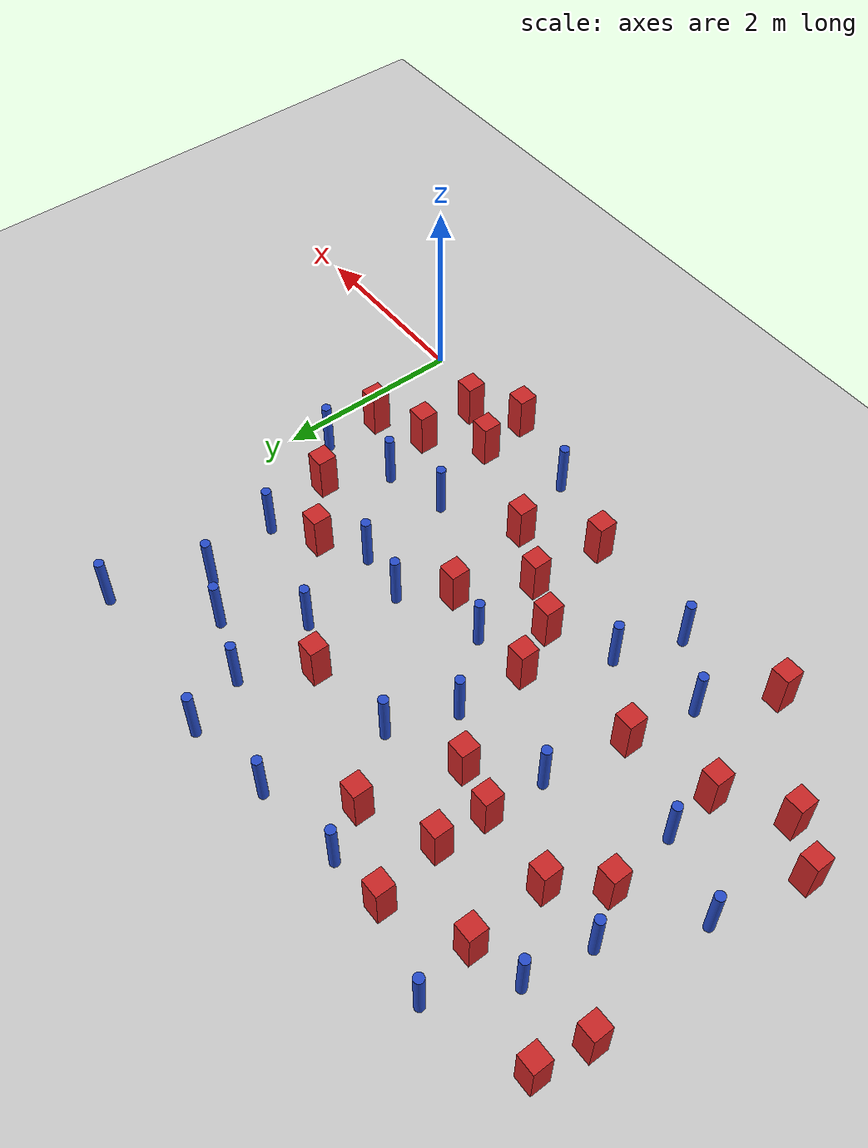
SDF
<sdf version="1.6">
 <world name="default">
  <model name="ground_plane">
   <static>1</static>
   <link name="link">
    <collision name="collision">
     <geometry><plane><normal>0 0 1</normal><size>100 100</size></plane></geometry>
     <surface><friction><ode><mu>100</mu><mu2>50</mu2></ode></friction></surface>
    </collision>
    <visual name="visual">
     <cast_shadows>0</cast_shadows>
     <geometry><plane><normal>0 0 1</normal><size>100 100</size></plane></geometry>
     <material>
      <ambient>1.0 1.0 1.0 1.0</ambient>
      <diffuse>0.8 0.8 0.8 1.0</diffuse>
      <specular>0.01 0.01 0.01 1.000000</specular>
     </material>
    </visual>
   </link>
  </model>
  <model name="square_post_obstacle1">
   <static>true</static>
   <pose>-3.82861871613 1.99735328516 1.91545236811e-07 -7.35059704564e-06 1.12565212e-07 2.39332434364e-05</pose>
   <link name="link">
    <pose>0 0 0.25 0 -0 0</pose>
    <inertial>
     <mass>100</mass>
     <inertia>
      <ixx>0.166667</ixx>
      <ixy>0</ixy>
      <ixz>0</ixz>
      <iyy>0.166667</iyy>
      <iyz>0</iyz>
      <izz>0.166667</izz>
     </inertia>
    </inertial>
    <collision name="collision"><geometry><box><size>.2 .2 .5</size></box></geometry></collision>
    <visual name="visual">
     <geometry><box><size>.2 .2 .5</size></box></geometry>
     <material>
      <script><name>Gazebo/Red</name><uri>file://media/materials/scripts/gazebo.material</uri></script>
     </material>
    </visual>
   </link>
  </model>
  <model name="pole_obstacle4">
   <static>true</static>
   <pose>-1.10873818178 3.6798783113 7.38925637345e-09 -8.47170692799e-08 1.24976765053e-08 -1.74513093017e-07</pose>
   <link name="link">
    <pose>0 0 0.3 0 -0 0</pose>
    <inertial>
     <mass>1</mass>
     <inertia><ixx>0.145833</ixx><ixy>0</ixy><ixz>0</ixz><iyy>0.145833</iyy><iyz>0</iyz><izz>0.125</izz></inertia>
    </inertial>
    <collision name="collision">
     <geometry><cylinder><radius>0.05</radius><length>.6</length></cylinder></geometry>
    </collision>
    <visual name="visual">
     <geometry><cylinder><radius>0.05</radius><length>.6</length></cylinder></geometry>
     <material>
      <script><name>Gazebo/Blue</name><uri>file://media/materials/scripts/gazebo.material</uri></script>
     </material>
    </visual>
   </link>
  </model>
  <model name="square_post_obstacle2">
   <static>true</static>
   <pose>-0.89729398552 0.916109627229 1.91545236811e-07 -7.35059704564e-06 1.12565212e-07 2.39332434364e-05</pose>
   <link name="link">
    <pose>0 0 0.25 0 -0 0</pose>
    <inertial>
     <mass>100</mass>
     <inertia>
      <ixx>0.166667</ixx>
      <ixy>0</ixy>
      <ixz>0</ixz>
      <iyy>0.166667</iyy>
      <iyz>0</iyz>
      <izz>0.166667</izz>
     </inertia>
    </inertial>
    <collision name="collision"><geometry><box><size>.2 .2 .5</size></box></geometry></collision>
    <visual name="visual">
     <geometry><box><size>.2 .2 .5</size></box></geometry>
     <material>
      <script><name>Gazebo/Red</name><uri>file://media/materials/scripts/gazebo.material</uri></script>
     </material>
    </visual>
   </link>
  </model>
  <model name="pole_obstacle14">
   <static>true</static>
   <pose>-3.2540493623 2.05309047934 7.38925637345e-09 -8.471706928e-08 1.24976765098e-08 -1.74513093016e-07</pose>
   <link name="link">
    <pose>0 0 0.3 0 -0 0</pose>
    <inertial>
     <mass>1</mass>
     <inertia><ixx>0.145833</ixx><ixy>0</ixy><ixz>0</ixz><iyy>0.145833</iyy><iyz>0</iyz><izz>0.125</izz></inertia>
    </inertial>
    <collision name="collision">
     <geometry><cylinder><radius>0.05</radius><length>.6</length></cylinder></geometry>
    </collision>
    <visual name="visual">
     <geometry><cylinder><radius>0.05</radius><length>.6</length></cylinder></geometry>
     <material>
      <script><name>Gazebo/Blue</name><uri>file://media/materials/scripts/gazebo.material</uri></script>
     </material>
    </visual>
   </link>
  </model>
  <model name="square_post_obstacle22">
   <static>true</static>
   <pose>-5.59544724633 3.22659309187 1.91545236811e-07 -7.35059704564e-06 1.12565212e-07 2.39332434364e-05</pose>
   <link name="link">
    <pose>0 0 0.25 0 -0 0</pose>
    <inertial>
     <mass>100</mass>
     <inertia>
      <ixx>0.166667</ixx>
      <ixy>0</ixy>
      <ixz>0</ixz>
      <iyy>0.166667</iyy>
      <iyz>0</iyz>
      <izz>0.166667</izz>
     </inertia>
    </inertial>
    <collision name="collision"><geometry><box><size>.2 .2 .5</size></box></geometry></collision>
    <visual name="visual">
     <geometry><box><size>.2 .2 .5</size></box></geometry>
     <material>
      <script><name>Gazebo/Red</name><uri>file://media/materials/scripts/gazebo.material</uri></script>
     </material>
    </visual>
   </link>
  </model>
  <model name="pole_obstacle36">
   <static>true</static>
   <pose>-5.75046494023 4.64045337168 7.38925637345e-09 -8.47170692796e-08 1.24976764786e-08 -1.74513093032e-07</pose>
   <link name="link">
    <pose>0 0 0.3 0 -0 0</pose>
    <inertial>
     <mass>1</mass>
     <inertia><ixx>0.145833</ixx><ixy>0</ixy><ixz>0</ixz><iyy>0.145833</iyy><iyz>0</iyz><izz>0.125</izz></inertia>
    </inertial>
    <collision name="collision">
     <geometry><cylinder><radius>0.05</radius><length>.6</length></cylinder></geometry>
    </collision>
    <visual name="visual">
     <geometry><cylinder><radius>0.05</radius><length>.6</length></cylinder></geometry>
     <material>
      <script><name>Gazebo/Blue</name><uri>file://media/materials/scripts/gazebo.material</uri></script>
     </material>
    </visual>
   </link>
  </model>
  <model name="square_post_obstacle32">
   <static>true</static>
   <pose>-1.37622830693 2.59084589432 1.91545236811e-07 -7.35059704564e-06 1.12565212e-07 2.39332434364e-05</pose>
   <link name="link">
    <pose>0 0 0.25 0 -0 0</pose>
    <inertial>
     <mass>100</mass>
     <inertia>
      <ixx>0.166667</ixx>
      <ixy>0</ixy>
      <ixz>0</ixz>
      <iyy>0.166667</iyy>
      <iyz>0</iyz>
      <izz>0.166667</izz>
     </inertia>
    </inertial>
    <collision name="collision"><geometry><box><size>.2 .2 .5</size></box></geometry></collision>
    <visual name="visual">
     <geometry><box><size>.2 .2 .5</size></box></geometry>
     <material>
      <script><name>Gazebo/Red</name><uri>file://media/materials/scripts/gazebo.material</uri></script>
     </material>
    </visual>
   </link>
  </model>
  <model name="square_post_obstacle33">
   <static>true</static>
   <pose>-4.2962798087 3.05084157516 1.91545236811e-07 -7.35059704564e-06 1.12565212e-07 2.39332434364e-05</pose>
   <link name="link">
    <pose>0 0 0.25 0 -0 0</pose>
    <inertial>
     <mass>100</mass>
     <inertia>
      <ixx>0.166667</ixx>
      <ixy>0</ixy>
      <ixz>0</ixz>
      <iyy>0.166667</iyy>
      <iyz>0</iyz>
      <izz>0.166667</izz>
     </inertia>
    </inertial>
    <collision name="collision"><geometry><box><size>.2 .2 .5</size></box></geometry></collision>
    <visual name="visual">
     <geometry><box><size>.2 .2 .5</size></box></geometry>
     <material>
      <script><name>Gazebo/Red</name><uri>file://media/materials/scripts/gazebo.material</uri></script>
     </material>
    </visual>
   </link>
  </model>
  <model name="square_post_obstacle36">
   <static>true</static>
   <pose>-1.34672621101 -0.0509006503075 1.91545236811e-07 -7.35059704564e-06 1.12565212e-07 2.39332434364e-05</pose>
   <link name="link">
    <pose>0 0 0.25 0 -0 0</pose>
    <inertial>
     <mass>100</mass>
     <inertia>
      <ixx>0.166667</ixx>
      <ixy>0</ixy>
      <ixz>0</ixz>
      <iyy>0.166667</iyy>
      <iyz>0</iyz>
      <izz>0.166667</izz>
     </inertia>
    </inertial>
    <collision name="collision"><geometry><box><size>.2 .2 .5</size></box></geometry></collision>
    <visual name="visual">
     <geometry><box><size>.2 .2 .5</size></box></geometry>
     <material>
      <script><name>Gazebo/Red</name><uri>file://media/materials/scripts/gazebo.material</uri></script>
     </material>
    </visual>
   </link>
  </model>
  <model name="pole_obstacle53">
   <static>true</static>
   <pose>-1.7264818208 1.3268778265 7.38925637345e-09 -8.471706928e-08 1.24976765079e-08 -1.74513093017e-07</pose>
   <link name="link">
    <pose>0 0 0.3 0 -0 0</pose>
    <inertial>
     <mass>1</mass>
     <inertia><ixx>0.145833</ixx><ixy>0</ixy><ixz>0</ixz><iyy>0.145833</iyy><iyz>0</iyz><izz>0.125</izz></inertia>
    </inertial>
    <collision name="collision">
     <geometry><cylinder><radius>0.05</radius><length>.6</length></cylinder></geometry>
    </collision>
    <visual name="visual">
     <geometry><cylinder><radius>0.05</radius><length>.6</length></cylinder></geometry>
     <material>
      <script><name>Gazebo/Blue</name><uri>file://media/materials/scripts/gazebo.material</uri></script>
     </material>
    </visual>
   </link>
  </model>
  <model name="square_post_obstacle42">
   <static>true</static>
   <pose>-4.88449978645 4.39351112853 1.91545236811e-07 -7.35059704564e-06 1.12565212e-07 2.39332434364e-05</pose>
   <link name="link">
    <pose>0 0 0.25 0 -0 0</pose>
    <inertial>
     <mass>100</mass>
     <inertia>
      <ixx>0.166667</ixx>
      <ixy>0</ixy>
      <ixz>0</ixz>
      <iyy>0.166667</iyy>
      <iyz>0</iyz>
      <izz>0.166667</izz>
     </inertia>
    </inertial>
    <collision name="collision"><geometry><box><size>.2 .2 .5</size></box></geometry></collision>
    <visual name="visual">
     <geometry><box><size>.2 .2 .5</size></box></geometry>
     <material>
      <script><name>Gazebo/Red</name><uri>file://media/materials/scripts/gazebo.material</uri></script>
     </material>
    </visual>
   </link>
  </model>
  <model name="square_post_obstacle43">
   <static>true</static>
   <pose>-5.46254135515 0.278101646873 1.91545236811e-07 -7.35059704564e-06 1.12565212e-07 2.39332434364e-05</pose>
   <link name="link">
    <pose>0 0 0.25 0 -0 0</pose>
    <inertial>
     <mass>100</mass>
     <inertia>
      <ixx>0.166667</ixx>
      <ixy>0</ixy>
      <ixz>0</ixz>
      <iyy>0.166667</iyy>
      <iyz>0</iyz>
      <izz>0.166667</izz>
     </inertia>
    </inertial>
    <collision name="collision"><geometry><box><size>.2 .2 .5</size></box></geometry></collision>
    <visual name="visual">
     <geometry><box><size>.2 .2 .5</size></box></geometry>
     <material>
      <script><name>Gazebo/Red</name><uri>file://media/materials/scripts/gazebo.material</uri></script>
     </material>
    </visual>
   </link>
  </model>
  <model name="pole_obstacle59">
   <static>true</static>
   <pose>-2.26407819195 0.169490094688 7.38925637345e-09 -8.471706928e-08 1.2497676517e-08 -1.74513093012e-07</pose>
   <link name="link">
    <pose>0 0 0.3 0 -0 0</pose>
    <inertial>
     <mass>1</mass>
     <inertia><ixx>0.145833</ixx><ixy>0</ixy><ixz>0</ixz><iyy>0.145833</iyy><iyz>0</iyz><izz>0.125</izz></inertia>
    </inertial>
    <collision name="collision">
     <geometry><cylinder><radius>0.05</radius><length>.6</length></cylinder></geometry>
    </collision>
    <visual name="visual">
     <geometry><cylinder><radius>0.05</radius><length>.6</length></cylinder></geometry>
     <material>
      <script><name>Gazebo/Blue</name><uri>file://media/materials/scripts/gazebo.material</uri></script>
     </material>
    </visual>
   </link>
  </model>
  <model name="square_post_obstacle47">
   <static>true</static>
   <pose>-4.75981678048 3.70433833082 1.91545236811e-07 -7.35059704564e-06 1.12565212e-07 2.39332434364e-05</pose>
   <link name="link">
    <pose>0 0 0.25 0 -0 0</pose>
    <inertial>
     <mass>100</mass>
     <inertia>
      <ixx>0.166667</ixx>
      <ixy>0</ixy>
      <ixz>0</ixz>
      <iyy>0.166667</iyy>
      <iyz>0</iyz>
      <izz>0.166667</izz>
     </inertia>
    </inertial>
    <collision name="collision"><geometry><box><size>.2 .2 .5</size></box></geometry></collision>
    <visual name="visual">
     <geometry><box><size>.2 .2 .5</size></box></geometry>
     <material>
      <script><name>Gazebo/Red</name><uri>file://media/materials/scripts/gazebo.material</uri></script>
     </material>
    </visual>
   </link>
  </model>
  <model name="square_post_obstacle49">
   <static>true</static>
   <pose>-2.62985750249 3.48583115859 1.91545236811e-07 -7.35059704564e-06 1.12565212e-07 2.39332434364e-05</pose>
   <link name="link">
    <pose>0 0 0.25 0 -0 0</pose>
    <inertial>
     <mass>100</mass>
     <inertia>
      <ixx>0.166667</ixx>
      <ixy>0</ixy>
      <ixz>0</ixz>
      <iyy>0.166667</iyy>
      <iyz>0</iyz>
      <izz>0.166667</izz>
     </inertia>
    </inertial>
    <collision name="collision"><geometry><box><size>.2 .2 .5</size></box></geometry></collision>
    <visual name="visual">
     <geometry><box><size>.2 .2 .5</size></box></geometry>
     <material>
      <script><name>Gazebo/Red</name><uri>file://media/materials/scripts/gazebo.material</uri></script>
     </material>
    </visual>
   </link>
  </model>
  <model name="pole_obstacle75">
   <static>true</static>
   <pose>-3.39257598105 4.58209513307 7.38925637345e-09 -8.47170692798e-08 1.24976765033e-08 -1.74513093019e-07</pose>
   <link name="link">
    <pose>0 0 0.3 0 -0 0</pose>
    <inertial>
     <mass>1</mass>
     <inertia><ixx>0.145833</ixx><ixy>0</ixy><ixz>0</ixz><iyy>0.145833</iyy><iyz>0</iyz><izz>0.125</izz></inertia>
    </inertial>
    <collision name="collision">
     <geometry><cylinder><radius>0.05</radius><length>.6</length></cylinder></geometry>
    </collision>
    <visual name="visual">
     <geometry><cylinder><radius>0.05</radius><length>.6</length></cylinder></geometry>
     <material>
      <script><name>Gazebo/Blue</name><uri>file://media/materials/scripts/gazebo.material</uri></script>
     </material>
    </visual>
   </link>
  </model>
  <model name="square_post_obstacle65">
   <static>true</static>
   <pose>-4.96301721024 1.71224650671 1.91545236811e-07 -7.35059704564e-06 1.12565212e-07 2.39332434364e-05</pose>
   <link name="link">
    <pose>0 0 0.25 0 -0 0</pose>
    <inertial>
     <mass>100</mass>
     <inertia>
      <ixx>0.166667</ixx>
      <ixy>0</ixy>
      <ixz>0</ixz>
      <iyy>0.166667</iyy>
      <iyz>0</iyz>
      <izz>0.166667</izz>
     </inertia>
    </inertial>
    <collision name="collision"><geometry><box><size>.2 .2 .5</size></box></geometry></collision>
    <visual name="visual">
     <geometry><box><size>.2 .2 .5</size></box></geometry>
     <material>
      <script><name>Gazebo/Red</name><uri>file://media/materials/scripts/gazebo.material</uri></script>
     </material>
    </visual>
   </link>
  </model>
  <model name="square_post_obstacle73">
   <static>true</static>
   <pose>-0.369655319681 1.14825361039 1.91545236811e-07 -7.35059704564e-06 1.12565212e-07 2.39332434364e-05</pose>
   <link name="link">
    <pose>0 0 0.25 0 -0 0</pose>
    <inertial>
     <mass>100</mass>
     <inertia>
      <ixx>0.166667</ixx>
      <ixy>0</ixy>
      <ixz>0</ixz>
      <iyy>0.166667</iyy>
      <iyz>0</iyz>
      <izz>0.166667</izz>
     </inertia>
    </inertial>
    <collision name="collision"><geometry><box><size>.2 .2 .5</size></box></geometry></collision>
    <visual name="visual">
     <geometry><box><size>.2 .2 .5</size></box></geometry>
     <material>
      <script><name>Gazebo/Red</name><uri>file://media/materials/scripts/gazebo.material</uri></script>
     </material>
    </visual>
   </link>
  </model>
  <model name="pole_obstacle89">
   <static>true</static>
   <pose>-3.80087336187 2.71158850187 7.38925637345e-09 -8.471706928e-08 1.24976765098e-08 -1.74513093016e-07</pose>
   <link name="link">
    <pose>0 0 0.3 0 -0 0</pose>
    <inertial>
     <mass>1</mass>
     <inertia><ixx>0.145833</ixx><ixy>0</ixy><ixz>0</ixz><iyy>0.145833</iyy><iyz>0</iyz><izz>0.125</izz></inertia>
    </inertial>
    <collision name="collision">
     <geometry><cylinder><radius>0.05</radius><length>.6</length></cylinder></geometry>
    </collision>
    <visual name="visual">
     <geometry><cylinder><radius>0.05</radius><length>.6</length></cylinder></geometry>
     <material>
      <script><name>Gazebo/Blue</name><uri>file://media/materials/scripts/gazebo.material</uri></script>
     </material>
    </visual>
   </link>
  </model>
  <model name="square_post_obstacle79">
   <static>true</static>
   <pose>-1.4237210547 0.494392746506 1.91545236811e-07 -7.35059704564e-06 1.12565212e-07 2.39332434364e-05</pose>
   <link name="link">
    <pose>0 0 0.25 0 -0 0</pose>
    <inertial>
     <mass>100</mass>
     <inertia>
      <ixx>0.166667</ixx>
      <ixy>0</ixy>
      <ixz>0</ixz>
      <iyy>0.166667</iyy>
      <iyz>0</iyz>
      <izz>0.166667</izz>
     </inertia>
    </inertial>
    <collision name="collision"><geometry><box><size>.2 .2 .5</size></box></geometry></collision>
    <visual name="visual">
     <geometry><box><size>.2 .2 .5</size></box></geometry>
     <material>
      <script><name>Gazebo/Red</name><uri>file://media/materials/scripts/gazebo.material</uri></script>
     </material>
    </visual>
   </link>
  </model>
  <model name="pole_obstacle93">
   <static>true</static>
   <pose>-4.21842144567 1.19878922163 7.38925637345e-09 -8.471706928e-08 1.24976765134e-08 -1.74513093015e-07</pose>
   <link name="link">
    <pose>0 0 0.3 0 -0 0</pose>
    <inertial>
     <mass>1</mass>
     <inertia><ixx>0.145833</ixx><ixy>0</ixy><ixz>0</ixz><iyy>0.145833</iyy><iyz>0</iyz><izz>0.125</izz></inertia>
    </inertial>
    <collision name="collision">
     <geometry><cylinder><radius>0.05</radius><length>.6</length></cylinder></geometry>
    </collision>
    <visual name="visual">
     <geometry><cylinder><radius>0.05</radius><length>.6</length></cylinder></geometry>
     <material>
      <script><name>Gazebo/Blue</name><uri>file://media/materials/scripts/gazebo.material</uri></script>
     </material>
    </visual>
   </link>
  </model>
  <model name="pole_obstacle94">
   <static>true</static>
   <pose>-5.88464390128 2.05511163188 7.38925637345e-09 -8.47170692798e-08 1.24976764937e-08 -1.74513093023e-07</pose>
   <link name="link">
    <pose>0 0 0.3 0 -0 0</pose>
    <inertial>
     <mass>1</mass>
     <inertia><ixx>0.145833</ixx><ixy>0</ixy><ixz>0</ixz><iyy>0.145833</iyy><iyz>0</iyz><izz>0.125</izz></inertia>
    </inertial>
    <collision name="collision">
     <geometry><cylinder><radius>0.05</radius><length>.6</length></cylinder></geometry>
    </collision>
    <visual name="visual">
     <geometry><cylinder><radius>0.05</radius><length>.6</length></cylinder></geometry>
     <material>
      <script><name>Gazebo/Blue</name><uri>file://media/materials/scripts/gazebo.material</uri></script>
     </material>
    </visual>
   </link>
  </model>
  <model name="pole_obstacle97">
   <static>true</static>
   <pose>-0.32615713015 1.74065500919 7.38925637345e-09 -8.47170692798e-08 1.24976765025e-08 -1.74513093018e-07</pose>
   <link name="link">
    <pose>0 0 0.3 0 -0 0</pose>
    <inertial>
     <mass>1</mass>
     <inertia><ixx>0.145833</ixx><ixy>0</ixy><ixz>0</ixz><iyy>0.145833</iyy><iyz>0</iyz><izz>0.125</izz></inertia>
    </inertial>
    <collision name="collision">
     <geometry><cylinder><radius>0.05</radius><length>.6</length></cylinder></geometry>
    </collision>
    <visual name="visual">
     <geometry><cylinder><radius>0.05</radius><length>.6</length></cylinder></geometry>
     <material>
      <script><name>Gazebo/Blue</name><uri>file://media/materials/scripts/gazebo.material</uri></script>
     </material>
    </visual>
   </link>
  </model>
  <model name="pole_obstacle100">
   <static>true</static>
   <pose>-6.23925597602 3.22507679364 7.38925637345e-09 -8.47170692798e-08 1.24976764937e-08 -1.74513093023e-07</pose>
   <link name="link">
    <pose>0 0 0.3 0 -0 0</pose>
    <inertial>
     <mass>1</mass>
     <inertia><ixx>0.145833</ixx><ixy>0</ixy><ixz>0</ixz><iyy>0.145833</iyy><iyz>0</iyz><izz>0.125</izz></inertia>
    </inertial>
    <collision name="collision">
     <geometry><cylinder><radius>0.05</radius><length>.6</length></cylinder></geometry>
    </collision>
    <visual name="visual">
     <geometry><cylinder><radius>0.05</radius><length>.6</length></cylinder></geometry>
     <material>
      <script><name>Gazebo/Blue</name><uri>file://media/materials/scripts/gazebo.material</uri></script>
     </material>
    </visual>
   </link>
  </model>
  <model name="square_post_obstacle102">
   <static>true</static>
   <pose>-0.868502044288 0.259589344754 1.91545236811e-07 -7.35059704564e-06 1.12565212e-07 2.39332434364e-05</pose>
   <link name="link">
    <pose>0 0 0.25 0 -0 0</pose>
    <inertial>
     <mass>100</mass>
     <inertia>
      <ixx>0.166667</ixx>
      <ixy>0</ixy>
      <ixz>0</ixz>
      <iyy>0.166667</iyy>
      <iyz>0</iyz>
      <izz>0.166667</izz>
     </inertia>
    </inertial>
    <collision name="collision"><geometry><box><size>.2 .2 .5</size></box></geometry></collision>
    <visual name="visual">
     <geometry><box><size>.2 .2 .5</size></box></geometry>
     <material>
      <script><name>Gazebo/Red</name><uri>file://media/materials/scripts/gazebo.material</uri></script>
     </material>
    </visual>
   </link>
  </model>
  <model name="pole_obstacle111">
   <static>true</static>
   <pose>-4.45268478891 0.519425926819 7.38925637345e-09 -8.471706928e-08 1.24976765164e-08 -1.74513093012e-07</pose>
   <link name="link">
    <pose>0 0 0.3 0 -0 0</pose>
    <inertial>
     <mass>1</mass>
     <inertia><ixx>0.145833</ixx><ixy>0</ixy><ixz>0</ixz><iyy>0.145833</iyy><iyz>0</iyz><izz>0.125</izz></inertia>
    </inertial>
    <collision name="collision">
     <geometry><cylinder><radius>0.05</radius><length>.6</length></cylinder></geometry>
    </collision>
    <visual name="visual">
     <geometry><cylinder><radius>0.05</radius><length>.6</length></cylinder></geometry>
     <material>
      <script><name>Gazebo/Blue</name><uri>file://media/materials/scripts/gazebo.material</uri></script>
     </material>
    </visual>
   </link>
  </model>
  <model name="square_post_obstacle111">
   <static>true</static>
   <pose>-5.6337568449 4.0310030945 1.91545236811e-07 -7.35059704564e-06 1.12565212e-07 2.39332434364e-05</pose>
   <link name="link">
    <pose>0 0 0.25 0 -0 0</pose>
    <inertial>
     <mass>100</mass>
     <inertia>
      <ixx>0.166667</ixx>
      <ixy>0</ixy>
      <ixz>0</ixz>
      <iyy>0.166667</iyy>
      <iyz>0</iyz>
      <izz>0.166667</izz>
     </inertia>
    </inertial>
    <collision name="collision"><geometry><box><size>.2 .2 .5</size></box></geometry></collision>
    <visual name="visual">
     <geometry><box><size>.2 .2 .5</size></box></geometry>
     <material>
      <script><name>Gazebo/Red</name><uri>file://media/materials/scripts/gazebo.material</uri></script>
     </material>
    </visual>
   </link>
  </model>
  <model name="pole_obstacle115">
   <static>true</static>
   <pose>-5.08942324214 0.983615040038 7.38925637345e-09 -8.471706928e-08 1.24976765166e-08 -1.74513093011e-07</pose>
   <link name="link">
    <pose>0 0 0.3 0 -0 0</pose>
    <inertial>
     <mass>1</mass>
     <inertia><ixx>0.145833</ixx><ixy>0</ixy><ixz>0</ixz><iyy>0.145833</iyy><iyz>0</iyz><izz>0.125</izz></inertia>
    </inertial>
    <collision name="collision">
     <geometry><cylinder><radius>0.05</radius><length>.6</length></cylinder></geometry>
    </collision>
    <visual name="visual">
     <geometry><cylinder><radius>0.05</radius><length>.6</length></cylinder></geometry>
     <material>
      <script><name>Gazebo/Blue</name><uri>file://media/materials/scripts/gazebo.material</uri></script>
     </material>
    </visual>
   </link>
  </model>
  <model name="square_post_obstacle113">
   <static>true</static>
   <pose>-4.0443296254 4.01644302751 1.91545236811e-07 -7.35059704564e-06 1.12565212e-07 2.39332434364e-05</pose>
   <link name="link">
    <pose>0 0 0.25 0 -0 0</pose>
    <inertial>
     <mass>100</mass>
     <inertia>
      <ixx>0.166667</ixx>
      <ixy>0</ixy>
      <ixz>0</ixz>
      <iyy>0.166667</iyy>
      <iyz>0</iyz>
      <izz>0.166667</izz>
     </inertia>
    </inertial>
    <collision name="collision"><geometry><box><size>.2 .2 .5</size></box></geometry></collision>
    <visual name="visual">
     <geometry><box><size>.2 .2 .5</size></box></geometry>
     <material>
      <script><name>Gazebo/Red</name><uri>file://media/materials/scripts/gazebo.material</uri></script>
     </material>
    </visual>
   </link>
  </model>
  <model name="square_post_obstacle115">
   <static>true</static>
   <pose>-3.14337051292 0.436961158678 1.91545236811e-07 -7.35059704564e-06 1.12565212e-07 2.39332434364e-05</pose>
   <link name="link">
    <pose>0 0 0.25 0 -0 0</pose>
    <inertial>
     <mass>100</mass>
     <inertia>
      <ixx>0.166667</ixx>
      <ixy>0</ixy>
      <ixz>0</ixz>
      <iyy>0.166667</iyy>
      <iyz>0</iyz>
      <izz>0.166667</izz>
     </inertia>
    </inertial>
    <collision name="collision"><geometry><box><size>.2 .2 .5</size></box></geometry></collision>
    <visual name="visual">
     <geometry><box><size>.2 .2 .5</size></box></geometry>
     <material>
      <script><name>Gazebo/Red</name><uri>file://media/materials/scripts/gazebo.material</uri></script>
     </material>
    </visual>
   </link>
  </model>
  <model name="square_post_obstacle117">
   <static>true</static>
   <pose>-3.10222040292 1.23319798799 1.91545236811e-07 -7.35059704564e-06 1.12565212e-07 2.39332434364e-05</pose>
   <link name="link">
    <pose>0 0 0.25 0 -0 0</pose>
    <inertial>
     <mass>100</mass>
     <inertia>
      <ixx>0.166667</ixx>
      <ixy>0</ixy>
      <ixz>0</ixz>
      <iyy>0.166667</iyy>
      <iyz>0</iyz>
      <izz>0.166667</izz>
     </inertia>
    </inertial>
    <collision name="collision"><geometry><box><size>.2 .2 .5</size></box></geometry></collision>
    <visual name="visual">
     <geometry><box><size>.2 .2 .5</size></box></geometry>
     <material>
      <script><name>Gazebo/Red</name><uri>file://media/materials/scripts/gazebo.material</uri></script>
     </material>
    </visual>
   </link>
  </model>
  <model name="pole_obstacle118">
   <static>true</static>
   <pose>-4.30916928756 4.45772670913 7.38925637345e-09 -8.47170692796e-08 1.24976764786e-08 -1.74513093032e-07</pose>
   <link name="link">
    <pose>0 0 0.3 0 -0 0</pose>
    <inertial>
     <mass>1</mass>
     <inertia><ixx>0.145833</ixx><ixy>0</ixy><ixz>0</ixz><iyy>0.145833</iyy><iyz>0</iyz><izz>0.125</izz></inertia>
    </inertial>
    <collision name="collision">
     <geometry><cylinder><radius>0.05</radius><length>.6</length></cylinder></geometry>
    </collision>
    <visual name="visual">
     <geometry><cylinder><radius>0.05</radius><length>.6</length></cylinder></geometry>
     <material>
      <script><name>Gazebo/Blue</name><uri>file://media/materials/scripts/gazebo.material</uri></script>
     </material>
    </visual>
   </link>
  </model>
  <model name="pole_obstacle119">
   <static>true</static>
   <pose>-0.908863043789 2.86088895708 7.38925637345e-09 -8.47170692799e-08 1.2497676509e-08 -1.74513093016e-07</pose>
   <link name="link">
    <pose>0 0 0.3 0 -0 0</pose>
    <inertial>
     <mass>1</mass>
     <inertia><ixx>0.145833</ixx><ixy>0</ixy><ixz>0</ixz><iyy>0.145833</iyy><iyz>0</iyz><izz>0.125</izz></inertia>
    </inertial>
    <collision name="collision">
     <geometry><cylinder><radius>0.05</radius><length>.6</length></cylinder></geometry>
    </collision>
    <visual name="visual">
     <geometry><cylinder><radius>0.05</radius><length>.6</length></cylinder></geometry>
     <material>
      <script><name>Gazebo/Blue</name><uri>file://media/materials/scripts/gazebo.material</uri></script>
     </material>
    </visual>
   </link>
  </model>
  <model name="pole_obstacle120">
   <static>true</static>
   <pose>-1.08600761465 1.49226533698 7.38925637345e-09 -8.471706928e-08 1.24976765079e-08 -1.74513093017e-07</pose>
   <link name="link">
    <pose>0 0 0.3 0 -0 0</pose>
    <inertial>
     <mass>1</mass>
     <inertia><ixx>0.145833</ixx><ixy>0</ixy><ixz>0</ixz><iyy>0.145833</iyy><iyz>0</iyz><izz>0.125</izz></inertia>
    </inertial>
    <collision name="collision">
     <geometry><cylinder><radius>0.05</radius><length>.6</length></cylinder></geometry>
    </collision>
    <visual name="visual">
     <geometry><cylinder><radius>0.05</radius><length>.6</length></cylinder></geometry>
     <material>
      <script><name>Gazebo/Blue</name><uri>file://media/materials/scripts/gazebo.material</uri></script>
     </material>
    </visual>
   </link>
  </model>
  <model name="pole_obstacle121">
   <static>true</static>
   <pose>-2.25668139829 4.12787472432 7.38925637345e-09 -8.47170692798e-08 1.24976765033e-08 -1.74513093019e-07</pose>
   <link name="link">
    <pose>0 0 0.3 0 -0 0</pose>
    <inertial>
     <mass>1</mass>
     <inertia><ixx>0.145833</ixx><ixy>0</ixy><ixz>0</ixz><iyy>0.145833</iyy><iyz>0</iyz><izz>0.125</izz></inertia>
    </inertial>
    <collision name="collision">
     <geometry><cylinder><radius>0.05</radius><length>.6</length></cylinder></geometry>
    </collision>
    <visual name="visual">
     <geometry><cylinder><radius>0.05</radius><length>.6</length></cylinder></geometry>
     <material>
      <script><name>Gazebo/Blue</name><uri>file://media/materials/scripts/gazebo.material</uri></script>
     </material>
    </visual>
   </link>
  </model>
  <model name="pole_obstacle127">
   <static>true</static>
   <pose>-6.12861925512 3.90177246256 7.38925637345e-09 -8.47170692798e-08 1.24976764937e-08 -1.74513093023e-07</pose>
   <link name="link">
    <pose>0 0 0.3 0 -0 0</pose>
    <inertial>
     <mass>1</mass>
     <inertia><ixx>0.145833</ixx><ixy>0</ixy><ixz>0</ixz><iyy>0.145833</iyy><iyz>0</iyz><izz>0.125</izz></inertia>
    </inertial>
    <collision name="collision">
     <geometry><cylinder><radius>0.05</radius><length>.6</length></cylinder></geometry>
    </collision>
    <visual name="visual">
     <geometry><cylinder><radius>0.05</radius><length>.6</length></cylinder></geometry>
     <material>
      <script><name>Gazebo/Blue</name><uri>file://media/materials/scripts/gazebo.material</uri></script>
     </material>
    </visual>
   </link>
  </model>
  <model name="pole_obstacle129">
   <static>true</static>
   <pose>-2.13041443169 3.23992465783 7.38925637345e-09 -8.47170692798e-08 1.24976764939e-08 -1.74513093025e-07</pose>
   <link name="link">
    <pose>0 0 0.3 0 -0 0</pose>
    <inertial>
     <mass>1</mass>
     <inertia><ixx>0.145833</ixx><ixy>0</ixy><ixz>0</ixz><iyy>0.145833</iyy><iyz>0</iyz><izz>0.125</izz></inertia>
    </inertial>
    <collision name="collision">
     <geometry><cylinder><radius>0.05</radius><length>.6</length></cylinder></geometry>
    </collision>
    <visual name="visual">
     <geometry><cylinder><radius>0.05</radius><length>.6</length></cylinder></geometry>
     <material>
      <script><name>Gazebo/Blue</name><uri>file://media/materials/scripts/gazebo.material</uri></script>
     </material>
    </visual>
   </link>
  </model>
  <model name="square_post_obstacle126">
   <static>true</static>
   <pose>-2.72688237356 1.93022170088 1.91545236811e-07 -7.35059704564e-06 1.12565212e-07 2.39332434364e-05</pose>
   <link name="link">
    <pose>0 0 0.25 0 -0 0</pose>
    <inertial>
     <mass>100</mass>
     <inertia>
      <ixx>0.166667</ixx>
      <ixy>0</ixy>
      <ixz>0</ixz>
      <iyy>0.166667</iyy>
      <iyz>0</iyz>
      <izz>0.166667</izz>
     </inertia>
    </inertial>
    <collision name="collision"><geometry><box><size>.2 .2 .5</size></box></geometry></collision>
    <visual name="visual">
     <geometry><box><size>.2 .2 .5</size></box></geometry>
     <material>
      <script><name>Gazebo/Red</name><uri>file://media/materials/scripts/gazebo.material</uri></script>
     </material>
    </visual>
   </link>
  </model>
  <model name="pole_obstacle135">
   <static>true</static>
   <pose>-1.59094032874 3.89150622042 7.38925637345e-09 -8.47170692799e-08 1.24976765053e-08 -1.74513093017e-07</pose>
   <link name="link">
    <pose>0 0 0.3 0 -0 0</pose>
    <inertial>
     <mass>1</mass>
     <inertia><ixx>0.145833</ixx><ixy>0</ixy><ixz>0</ixz><iyy>0.145833</iyy><iyz>0</iyz><izz>0.125</izz></inertia>
    </inertial>
    <collision name="collision">
     <geometry><cylinder><radius>0.05</radius><length>.6</length></cylinder></geometry>
    </collision>
    <visual name="visual">
     <geometry><cylinder><radius>0.05</radius><length>.6</length></cylinder></geometry>
     <material>
      <script><name>Gazebo/Blue</name><uri>file://media/materials/scripts/gazebo.material</uri></script>
     </material>
    </visual>
   </link>
  </model>
  <model name="pole_obstacle146">
   <static>true</static>
   <pose>-2.48833413596 4.7210966056 7.38925637345e-09 -8.47170692798e-08 1.24976765033e-08 -1.74513093019e-07</pose>
   <link name="link">
    <pose>0 0 0.3 0 -0 0</pose>
    <inertial>
     <mass>1</mass>
     <inertia><ixx>0.145833</ixx><ixy>0</ixy><ixz>0</ixz><iyy>0.145833</iyy><iyz>0</iyz><izz>0.125</izz></inertia>
    </inertial>
    <collision name="collision">
     <geometry><cylinder><radius>0.05</radius><length>.6</length></cylinder></geometry>
    </collision>
    <visual name="visual">
     <geometry><cylinder><radius>0.05</radius><length>.6</length></cylinder></geometry>
     <material>
      <script><name>Gazebo/Blue</name><uri>file://media/materials/scripts/gazebo.material</uri></script>
     </material>
    </visual>
   </link>
  </model>
  <model name="pole_obstacle151">
   <static>true</static>
   <pose>-6.67207843448 2.34021694918 7.38925637345e-09 -8.47170692798e-08 1.24976764937e-08 -1.74513093023e-07</pose>
   <link name="link">
    <pose>0 0 0.3 0 -0 0</pose>
    <inertial>
     <mass>1</mass>
     <inertia><ixx>0.145833</ixx><ixy>0</ixy><ixz>0</ixz><iyy>0.145833</iyy><iyz>0</iyz><izz>0.125</izz></inertia>
    </inertial>
    <collision name="collision">
     <geometry><cylinder><radius>0.05</radius><length>.6</length></cylinder></geometry>
    </collision>
    <visual name="visual">
     <geometry><cylinder><radius>0.05</radius><length>.6</length></cylinder></geometry>
     <material>
      <script><name>Gazebo/Blue</name><uri>file://media/materials/scripts/gazebo.material</uri></script>
     </material>
    </visual>
   </link>
  </model>
  <model name="square_post_obstacle145">
   <static>true</static>
   <pose>-6.73262511939 4.29479677804 1.91545236811e-07 -7.35059704564e-06 1.12565212e-07 2.39332434364e-05</pose>
   <link name="link">
    <pose>0 0 0.25 0 -0 0</pose>
    <inertial>
     <mass>100</mass>
     <inertia>
      <ixx>0.166667</ixx>
      <ixy>0</ixy>
      <ixz>0</ixz>
      <iyy>0.166667</iyy>
      <iyz>0</iyz>
      <izz>0.166667</izz>
     </inertia>
    </inertial>
    <collision name="collision"><geometry><box><size>.2 .2 .5</size></box></geometry></collision>
    <visual name="visual">
     <geometry><box><size>.2 .2 .5</size></box></geometry>
     <material>
      <script><name>Gazebo/Red</name><uri>file://media/materials/scripts/gazebo.material</uri></script>
     </material>
    </visual>
   </link>
  </model>
  <model name="square_post_obstacle149">
   <static>true</static>
   <pose>-6.88263904032 1.41807788198 1.91545236811e-07 -7.35059704564e-06 1.12565212e-07 2.39332434364e-05</pose>
   <link name="link">
    <pose>0 0 0.25 0 -0 0</pose>
    <inertial>
     <mass>100</mass>
     <inertia>
      <ixx>0.166667</ixx>
      <ixy>0</ixy>
      <ixz>0</ixz>
      <iyy>0.166667</iyy>
      <iyz>0</iyz>
      <izz>0.166667</izz>
     </inertia>
    </inertial>
    <collision name="collision"><geometry><box><size>.2 .2 .5</size></box></geometry></collision>
    <visual name="visual">
     <geometry><box><size>.2 .2 .5</size></box></geometry>
     <material>
      <script><name>Gazebo/Red</name><uri>file://media/materials/scripts/gazebo.material</uri></script>
     </material>
    </visual>
   </link>
  </model>
  <model name="pole_obstacle163">
   <static>true</static>
   <pose>-4.81644958926 2.56741391456 7.38925637345e-09 -8.47170692798e-08 1.24976764937e-08 -1.74513093023e-07</pose>
   <link name="link">
    <pose>0 0 0.3 0 -0 0</pose>
    <inertial>
     <mass>1</mass>
     <inertia><ixx>0.145833</ixx><ixy>0</ixy><ixz>0</ixz><iyy>0.145833</iyy><iyz>0</iyz><izz>0.125</izz></inertia>
    </inertial>
    <collision name="collision">
     <geometry><cylinder><radius>0.05</radius><length>.6</length></cylinder></geometry>
    </collision>
    <visual name="visual">
     <geometry><cylinder><radius>0.05</radius><length>.6</length></cylinder></geometry>
     <material>
      <script><name>Gazebo/Blue</name><uri>file://media/materials/scripts/gazebo.material</uri></script>
     </material>
    </visual>
   </link>
  </model>
  <model name="square_post_obstacle165">
   <static>true</static>
   <pose>-0.765306704618 2.10412059349 1.91545236811e-07 -7.35059704564e-06 1.12565212e-07 2.39332434364e-05</pose>
   <link name="link">
    <pose>0 0 0.25 0 -0 0</pose>
    <inertial>
     <mass>100</mass>
     <inertia>
      <ixx>0.166667</ixx>
      <ixy>0</ixy>
      <ixz>0</ixz>
      <iyy>0.166667</iyy>
      <iyz>0</iyz>
      <izz>0.166667</izz>
     </inertia>
    </inertial>
    <collision name="collision"><geometry><box><size>.2 .2 .5</size></box></geometry></collision>
    <visual name="visual">
     <geometry><box><size>.2 .2 .5</size></box></geometry>
     <material>
      <script><name>Gazebo/Red</name><uri>file://media/materials/scripts/gazebo.material</uri></script>
     </material>
    </visual>
   </link>
  </model>
  <model name="pole_obstacle179">
   <static>true</static>
   <pose>-0.700601161014 4.60122194969 7.38925637345e-09 -8.471706928e-08 1.24976765086e-08 -1.74513093015e-07</pose>
   <link name="link">
    <pose>0 0 0.3 0 -0 0</pose>
    <inertial>
     <mass>1</mass>
     <inertia><ixx>0.145833</ixx><ixy>0</ixy><ixz>0</ixz><iyy>0.145833</iyy><iyz>0</iyz><izz>0.125</izz></inertia>
    </inertial>
    <collision name="collision">
     <geometry><cylinder><radius>0.05</radius><length>.6</length></cylinder></geometry>
    </collision>
    <visual name="visual">
     <geometry><cylinder><radius>0.05</radius><length>.6</length></cylinder></geometry>
     <material>
      <script><name>Gazebo/Blue</name><uri>file://media/materials/scripts/gazebo.material</uri></script>
     </material>
    </visual>
   </link>
  </model>
  <model name="square_post_obstacle178">
   <static>true</static>
   <pose>-4.78344489763 3.18163531101 1.91545236811e-07 -7.35059704564e-06 1.12565212e-07 2.39332434364e-05</pose>
   <link name="link">
    <pose>0 0 0.25 0 -0 0</pose>
    <inertial>
     <mass>100</mass>
     <inertia>
      <ixx>0.166667</ixx>
      <ixy>0</ixy>
      <ixz>0</ixz>
      <iyy>0.166667</iyy>
      <iyz>0</iyz>
      <izz>0.166667</izz>
     </inertia>
    </inertial>
    <collision name="collision"><geometry><box><size>.2 .2 .5</size></box></geometry></collision>
    <visual name="visual">
     <geometry><box><size>.2 .2 .5</size></box></geometry>
     <material>
      <script><name>Gazebo/Red</name><uri>file://media/materials/scripts/gazebo.material</uri></script>
     </material>
    </visual>
   </link>
  </model>
  <model name="pole_obstacle182">
   <static>true</static>
   <pose>-2.38033249357 2.37875740882 7.38925637345e-09 -8.47170692798e-08 1.24976764939e-08 -1.74513093025e-07</pose>
   <link name="link">
    <pose>0 0 0.3 0 -0 0</pose>
    <inertial>
     <mass>1</mass>
     <inertia><ixx>0.145833</ixx><ixy>0</ixy><ixz>0</ixz><iyy>0.145833</iyy><iyz>0</iyz><izz>0.125</izz></inertia>
    </inertial>
    <collision name="collision">
     <geometry><cylinder><radius>0.05</radius><length>.6</length></cylinder></geometry>
    </collision>
    <visual name="visual">
     <geometry><cylinder><radius>0.05</radius><length>.6</length></cylinder></geometry>
     <material>
      <script><name>Gazebo/Blue</name><uri>file://media/materials/scripts/gazebo.material</uri></script>
     </material>
    </visual>
   </link>
  </model>
  <model name="square_post_obstacle194">
   <static>true</static>
   <pose>-6.43814146662 1.13137407291 1.91545236811e-07 -7.35059704564e-06 1.12565212e-07 2.39332434364e-05</pose>
   <link name="link">
    <pose>0 0 0.25 0 -0 0</pose>
    <inertial>
     <mass>100</mass>
     <inertia>
      <ixx>0.166667</ixx>
      <ixy>0</ixy>
      <ixz>0</ixz>
      <iyy>0.166667</iyy>
      <iyz>0</iyz>
      <izz>0.166667</izz>
     </inertia>
    </inertial>
    <collision name="collision"><geometry><box><size>.2 .2 .5</size></box></geometry></collision>
    <visual name="visual">
     <geometry><box><size>.2 .2 .5</size></box></geometry>
     <material>
      <script><name>Gazebo/Red</name><uri>file://media/materials/scripts/gazebo.material</uri></script>
     </material>
    </visual>
   </link>
  </model>
  <model name="square_post_obstacle195">
   <static>true</static>
   <pose>-6.82474294458 3.77832131784 1.91545236811e-07 -7.35059704564e-06 1.12565212e-07 2.39332434364e-05</pose>
   <link name="link">
    <pose>0 0 0.25 0 -0 0</pose>
    <inertial>
     <mass>100</mass>
     <inertia>
      <ixx>0.166667</ixx>
      <ixy>0</ixy>
      <ixz>0</ixz>
      <iyy>0.166667</iyy>
      <iyz>0</iyz>
      <izz>0.166667</izz>
     </inertia>
    </inertial>
    <collision name="collision"><geometry><box><size>.2 .2 .5</size></box></geometry></collision>
    <visual name="visual">
     <geometry><box><size>.2 .2 .5</size></box></geometry>
     <material>
      <script><name>Gazebo/Red</name><uri>file://media/materials/scripts/gazebo.material</uri></script>
     </material>
    </visual>
   </link>
  </model>
  <model name="square_post_obstacle196">
   <static>true</static>
   <pose>-3.5925833841 1.49596882352 1.91545236811e-07 -7.35059704564e-06 1.12565212e-07 2.39332434364e-05</pose>
   <link name="link">
    <pose>0 0 0.25 0 -0 0</pose>
    <inertial>
     <mass>100</mass>
     <inertia>
      <ixx>0.166667</ixx>
      <ixy>0</ixy>
      <ixz>0</ixz>
      <iyy>0.166667</iyy>
      <iyz>0</iyz>
      <izz>0.166667</izz>
     </inertia>
    </inertial>
    <collision name="collision"><geometry><box><size>.2 .2 .5</size></box></geometry></collision>
    <visual name="visual">
     <geometry><box><size>.2 .2 .5</size></box></geometry>
     <material>
      <script><name>Gazebo/Red</name><uri>file://media/materials/scripts/gazebo.material</uri></script>
     </material>
    </visual>
   </link>
  </model>
  <model name="pole_obstacle188">
   <static>true</static>
   <pose>-3.55630217325 3.37229355894 7.38925637345e-09 -8.471706928e-08 1.24976765098e-08 -1.74513093016e-07</pose>
   <link name="link">
    <pose>0 0 0.3 0 -0 0</pose>
    <inertial>
     <mass>1</mass>
     <inertia><ixx>0.145833</ixx><ixy>0</ixy><ixz>0</ixz><iyy>0.145833</iyy><iyz>0</iyz><izz>0.125</izz></inertia>
    </inertial>
    <collision name="collision">
     <geometry><cylinder><radius>0.05</radius><length>.6</length></cylinder></geometry>
    </collision>
    <visual name="visual">
     <geometry><cylinder><radius>0.05</radius><length>.6</length></cylinder></geometry>
     <material>
      <script><name>Gazebo/Blue</name><uri>file://media/materials/scripts/gazebo.material</uri></script>
     </material>
    </visual>
   </link>
  </model>
  <model name="square_post_obstacle206">
   <static>true</static>
   <pose>-2.511614128 0.917122298502 1.91545236811e-07 -7.35059704564e-06 1.12565212e-07 2.39332434364e-05</pose>
   <link name="link">
    <pose>0 0 0.25 0 -0 0</pose>
    <inertial>
     <mass>100</mass>
     <inertia>
      <ixx>0.166667</ixx>
      <ixy>0</ixy>
      <ixz>0</ixz>
      <iyy>0.166667</iyy>
      <iyz>0</iyz>
      <izz>0.166667</izz>
     </inertia>
    </inertial>
    <collision name="collision"><geometry><box><size>.2 .2 .5</size></box></geometry></collision>
    <visual name="visual">
     <geometry><box><size>.2 .2 .5</size></box></geometry>
     <material>
      <script><name>Gazebo/Red</name><uri>file://media/materials/scripts/gazebo.material</uri></script>
     </material>
    </visual>
   </link>
  </model>
  <model name="pole_obstacle209">
   <static>true</static>
   <pose>-1.82752745449 2.31857884468 7.38925637345e-09 -8.47170692799e-08 1.24976765053e-08 -1.74513093017e-07</pose>
   <link name="link">
    <pose>0 0 0.3 0 -0 0</pose>
    <inertial>
     <mass>1</mass>
     <inertia><ixx>0.145833</ixx><ixy>0</ixy><ixz>0</ixz><iyy>0.145833</iyy><iyz>0</iyz><izz>0.125</izz></inertia>
    </inertial>
    <collision name="collision">
     <geometry><cylinder><radius>0.05</radius><length>.6</length></cylinder></geometry>
    </collision>
    <visual name="visual">
     <geometry><cylinder><radius>0.05</radius><length>.6</length></cylinder></geometry>
     <material>
      <script><name>Gazebo/Blue</name><uri>file://media/materials/scripts/gazebo.material</uri></script>
     </material>
    </visual>
   </link>
  </model>
  <model name="square_post_obstacle225">
   <static>true</static>
   <pose>-5.8279100352 1.50337998808 1.91545236811e-07 -7.35059704564e-06 1.12565212e-07 2.39332434364e-05</pose>
   <link name="link">
    <pose>0 0 0.25 0 -0 0</pose>
    <inertial>
     <mass>100</mass>
     <inertia>
      <ixx>0.166667</ixx>
      <ixy>0</ixy>
      <ixz>0</ixz>
      <iyy>0.166667</iyy>
      <iyz>0</iyz>
      <izz>0.166667</izz>
     </inertia>
    </inertial>
    <collision name="collision"><geometry><box><size>.2 .2 .5</size></box></geometry></collision>
    <visual name="visual">
     <geometry><box><size>.2 .2 .5</size></box></geometry>
     <material>
      <script><name>Gazebo/Red</name><uri>file://media/materials/scripts/gazebo.material</uri></script>
     </material>
    </visual>
   </link>
  </model>
  <model name="square_post_obstacle227">
   <static>true</static>
   <pose>-5.9608200352 2.80088998808 1.91545236811e-07 -7.35059704564e-06 1.12565212e-07 2.39332434364e-05</pose>
   <link name="link">
    <pose>0 0 0.25 0 -0 0</pose>
    <inertial>
     <mass>100</mass>
     <inertia>
      <ixx>0.166667</ixx>
      <ixy>0</ixy>
      <ixz>0</ixz>
      <iyy>0.166667</iyy>
      <iyz>0</iyz>
      <izz>0.166667</izz>
     </inertia>
    </inertial>
    <collision name="collision"><geometry><box><size>.2 .2 .5</size></box></geometry></collision>
    <visual name="visual">
     <geometry><box><size>.2 .2 .5</size></box></geometry>
     <material>
      <script><name>Gazebo/Red</name><uri>file://media/materials/scripts/gazebo.material</uri></script>
     </material>
    </visual>
   </link>
  </model>
 </world>
</sdf>
